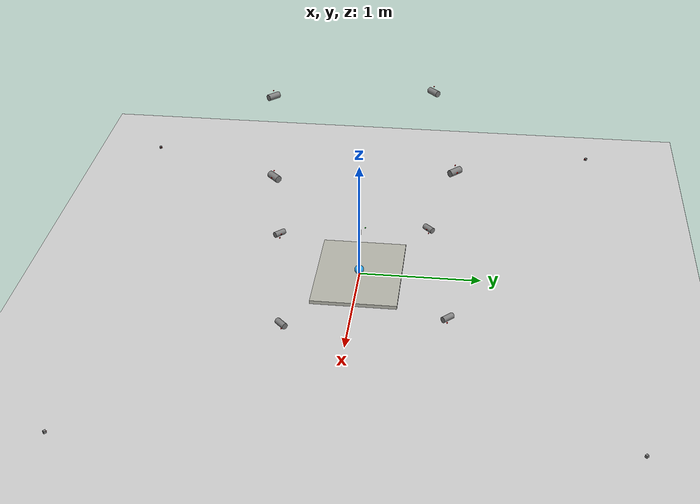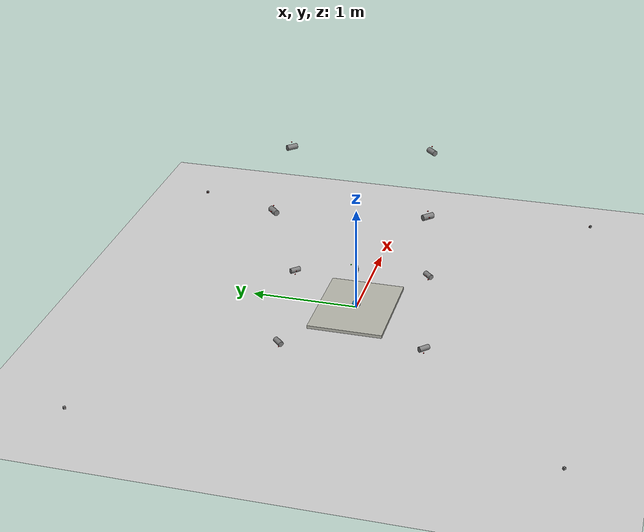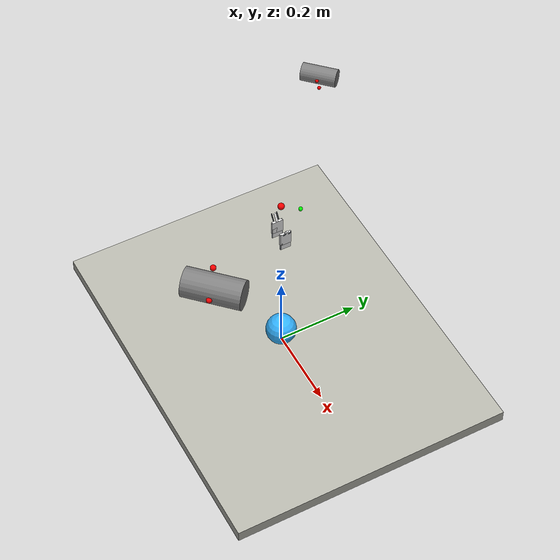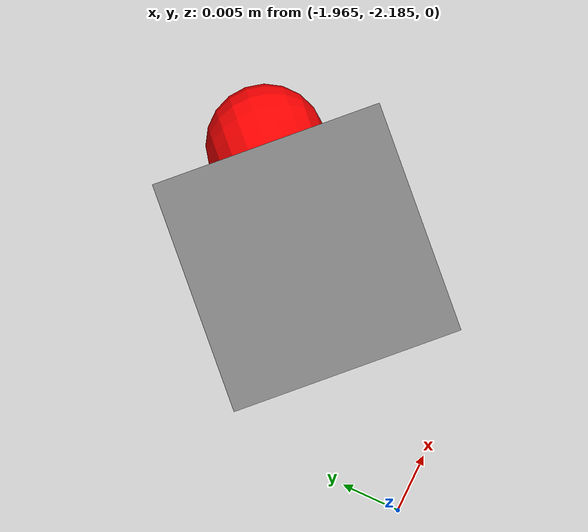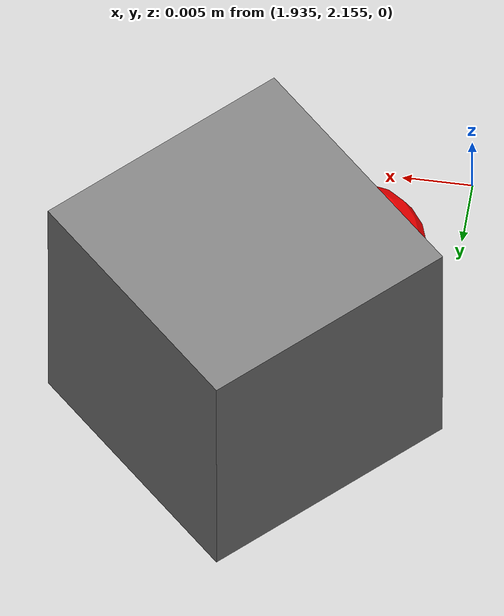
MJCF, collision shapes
<mujoco model="cdpr_contact_audit">
  <compiler autolimits="true"/>
  <option timestep="0.002" solver="Newton" iterations="50"/>
  <include file="/Users/damirnurtdinov/Desktop/My Courses/Диплом/RL_VLA_Bootstrapping/RL_VLA_Bootstrapping/robots/cdpr/cdpr_mujoco/cdpr.xml"/>
  <worldbody>
    <body name="audit_table" pos="0 0 0">
      <geom name="audit_table_top" type="box" size="0.45 0.35 0.015" friction="1.0 0.01 0.001" rgba="0.70 0.70 0.66 1"/>
    </body>
  </worldbody>
  <include file="/Users/damirnurtdinov/Desktop/My Courses/Диплом/RL_VLA_Bootstrapping/RL_VLA_Bootstrapping/robots/cdpr/cdpr_mujoco/stable_objects/ycb_apple.xml"/>
</mujoco>

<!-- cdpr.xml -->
<mujoco>
  <compiler autolimits="true"/>
  <default>
    <site type="sphere" rgba="1 0 0 1" size="0.005"/>
    <tendon rgba="0.22 0.24 0.27 0.0" width="0.002"/>
    <default class="gripper_surface">
      <geom contype="0" conaffinity="0" group="1" material="gripper_surface_material"
            rgba="0.94 0.94 0.94 1"/>
    </default>
    <default class="gripper_edge">
      <geom contype="0" conaffinity="0" group="1" rgba="0.10 0.12 0.14 1"/>
    </default>
    <default class="finger_pad_collision">
      <geom contype="2" conaffinity="1" group="3" condim="4"
            friction="3.0 0.08 0.003" solref="0.005 1"
            solimp="0.95 0.99 0.001" margin="0.001"
            rgba="0.94 0.94 0.94 1"/>
    </default>
  </default>
  <visual>
    <headlight ambient=".16 .16 .16"
               diffuse=".62 .62 .62"
               specular=".08 .08 .08"/>
    <rgba haze=".035 .050 .075 1"/>
    <map znear="0.0002" zfar="2.0"/>
  </visual>

  <asset>
    <material name="gripper_surface_material" rgba="1 1 1 1"
              specular="0.35" shininess="0.45" reflectance="0.08"/>
    <!-- Real CAD base, converted from the supplied ASCII STL to binary STL for MuJoCo. -->
    <mesh name="real_gripper_base" file="meshes/base2.stl"
          scale="0.00055 0.00055 0.00055"/>
  </asset>

  <worldbody>
    <light name="side_light"
         pos="1.0 -1.0 2.0"
         dir="-1 1 -1"
         ambient="0.04 0.04 0.04"
         diffuse="0.42 0.42 0.42"
         specular="0.06 0.06 0.06"
         directional="true"
         castshadow="false"/>
    <light name="fill_light"
         pos="-1.0 -0.8 1.7"
         dir="1 0.8 -1"
         ambient="0.05 0.05 0.05"
         diffuse="0.32 0.32 0.32"
         specular="0.03 0.03 0.03"
         directional="true"
         castshadow="false"/>
    <camera name="overview" mode="fixed" pos="0 -0.5412341 0.5125"
            xyaxes="1 0 0 0 0.5 0.8660254" fovy="45"/>

    <body name="rotor_1_up" pos="-0.535 -0.755 1.309" euler="90 45 0">
      <geom name="rotor_1_up" type="cylinder" size=".025 .05"/>
      <site name="top_main_site_1" pos="-0.025 0.00001 0" />
      <site name="top_sidesite_1" pos="0 0.05 0" />

      <body name="rotor_1_down" pos="0 -1.309 0" euler="0 0 0">
        <geom name="rotor_1_down" type="cylinder" size=".025 .05"/>
        <site name="bot_main_site_1" pos="0.025 -0.00001 0" />
        <site name="bot_sidesite_1" pos="0 -0.05 0" />

        <body name="slider_1" pos="-2 0 0">
          <inertial pos="0 0 0" mass="2" diaginertia="0.0001 0.0001 0.0001" />
          <joint name="slider_1" type="slide" axis="-1 0 0" damping="5"/>
          <geom type="box" size="0.01 0.01 0.01" />
          <site name="slider_1" pos="0.01 0 0"/>
        </body>
      </body>
    </body>

    <body name="rotor_2_up" pos="0.755 -0.525 1.309" euler="90 135 0">
      <geom name="rotor_2_up" type="cylinder" size=".025 .05"/>
      <site name="top_main_site_2" pos="-0.025 0.00001 0" />
      <site name="top_sidesite_2" pos="0 0.05 0" />

      <body name="rotor_2_down" pos="0 -1.309 0" euler="0 0 0">
        <geom name="rotor_2_down" type="cylinder" size=".025 .05"/>
        <site name="bot_main_site_2" pos="0.025 -0.00001 0" />
        <site name="bot_sidesite_2" pos="0 -0.05 0" />

        <body name="slider_2" pos="-2 0 0">
          <inertial pos="0 0 0" mass="2" diaginertia="0.0001 0.0001 0.0001" />
          <joint name="slider_2" type="slide" axis="-1 0 0" damping="5"/>
          <geom type="box" size="0.01 0.01 0.01" />
          <site name="slider_2" pos="0.01 0 0"/>
        </body>
      </body>
    </body>

    <body name="rotor_3_up" pos="0.535 0.755 1.309" euler="90 -135 0">
      <geom name="rotor_3_up" type="cylinder" size=".025 .05"/>
      <site name="top_main_site_3" pos="-0.025 0.00001 0" />
      <site name="top_sidesite_3" pos="0 0.05 0" />

      <body name="rotor_3_down" pos="0 -1.309 0" euler="0 0 0">
        <geom name="rotor_3_down" type="cylinder" size=".025 .05"/>
        <site name="bot_main_site_3" pos="0.025 -0.00001 0" />
        <site name="bot_sidesite_3" pos="0 -0.05 0" />

        <body name="slider_3" pos="-2 0 0">
          <inertial pos="0 0 0" mass="2" diaginertia="0.0001 0.0001 0.0001" />
          <joint name="slider_3" type="slide" axis="-1 0 0" damping="5"/>
          <geom type="box" size="0.01 0.01 0.01" />
          <site name="slider_3" pos="0.01 0 0"/>
        </body>
      </body>
    </body>

    <body name="rotor_4_up" pos="-0.755 0.525 1.309" euler="90  -45 0">
      <geom name="rotor_4_up" type="cylinder" size=".025 .05"/>
      <site name="top_main_site_4" pos="-0.025 0.00001 0" />
      <site name="top_sidesite_4" pos="0 0.05 0" />

      <body name="rotor_4_down" pos="0 -1.309 0" euler="0 0 0">
        <geom name="rotor_4_down" type="cylinder" size=".025 .05"/>
        <site name="bot_main_site_4" pos="0.025 -0.00001 0" />
        <site name="bot_sidesite_4" pos="0 -0.05 0" />

        <body name="slider_4" pos="-2 0 0">
          <inertial pos="0 0 0" mass="2" diaginertia="0.0001 0.0001 0.0001" />
          <joint name="slider_4" type="slide" axis="-1 0 0" damping="5"/>
          <geom type="box" size="0.01 0.01 0.01" />
          <site name="slider_4" pos="0.01 0 0"/>
        </body>
      </body>
    </body>

    <!-- Floor -->
    <geom name="floor" type="plane" size="5 5 0.1" pos="0 0 -0.1" rgba="0.8 0.8 0.8 1"/>

    <!-- Red square object on floor -->

    <!-- End-effector -->
    <!-- ===== Cable-suspended base (translation+rotation from cables) ===== -->
    <body name="ee_base" pos="0 0 0.40">
      <joint name="ee_free" type="free" damping="3" armature="0.002"/>
      <inertial pos="0 0 0" mass="1.2" diaginertia="0.02 0.02 0.02"/>

      <!-- Cable attachment point from the reference image; coordinates are unchanged. -->
      <site name="topcenter" pos="0 0 0.08" size="0.008" rgba="1 0 0 1"/>

      <!-- ===== NEW: intermediate yaw body ===== -->
      <body name="yaw_frame" pos="0 0 0">
        <!-- must have inertial because it has a joint -->
        <inertial pos="0 0 0" mass="0.15" diaginertia="0.0006 0.0006 0.0006"/>
        <joint name="ee_yaw" type="hinge" axis="0 0 1"
              limited="true" range="-180 180" damping="0.4"/>

        <!-- ===== Orientation stabilizer under yaw ===== -->
        <body name="ee_stab" pos="0 0 0">
          <inertial pos="0 0 0" mass="0.6" diaginertia="0.005 0.005 0.005"/>
          <joint name="ee_ball" type="ball" damping="6" stiffness="80" armature="0.02" limited="false"/>

          <!-- Camera follows the lowered mesh while retaining its clear downward view. -->
          <body name="camera_body" pos="0 0.05 0.045">
            <site name="ee_camera_marker" type="sphere" size="0.005" rgba="0 1 0 1"/>
            <camera name="ee_camera" mode="fixed" fovy="60" euler="-15 0 0"/>
          </body>

          <!-- Gripper -->
          <body name="ee_platform" pos="0 0 0.08">
            <inertial pos="0 0 0" mass="0.35" diaginertia="0.003 0.003 0.003"/>

            <!-- The supplied base is lowered so topcenter lies on top of the circular
                 housing; its camera mount still points toward camera_body at +Y. -->
            <geom name="palm" class="gripper_surface" type="mesh" mesh="real_gripper_base"
                  pos="0 0 -0.025" euler="180 0 0"/>

            <!-- The synchronized slide-joint control contract is unchanged. -->
            <body name="finger_left_car" pos="0.02 0 0">
              <inertial pos="0 0 0" mass="0.08" diaginertia="0.0002 0.0002 0.00015"/>
              <joint name="finger_l" type="slide" axis="1 0 0" limited="true" range="0 0.03" damping="3.0"/>
              <geom name="finger_l_shoulder" class="gripper_surface" type="capsule"
                    fromto="0.010 0 -0.055  0 0 -0.070" size="0.0025"/>
              <geom name="finger_l_shoulder_edge_front" class="gripper_edge" type="capsule"
                    fromto="0.014 -0.0065 -0.0565  0.004 -0.0065 -0.0715" size="0.0013"/>
              <geom name="finger_l_shoulder_edge_back" class="gripper_edge" type="capsule"
                    fromto="0.014 0.0065 -0.0565  0.004 0.0065 -0.0715" size="0.0013"/>
              <geom name="finger_l_link" class="gripper_surface" type="box"
                    size="0.0025 0.012 0.0175" pos="0 0 -0.0875"/>
              <geom name="finger_l_tip" class="gripper_surface" type="box"
                    size="0.0025 0.012 0.007" pos="0 0 -0.112"/>
              <geom name="finger_l_edge_front_outer" class="gripper_edge" type="capsule"
                    fromto="0.0018 -0.0125 -0.0695  0.0018 -0.0125 -0.1195" size="0.0007"/>
              <geom name="finger_l_edge_front_inner" class="gripper_edge" type="capsule"
                    fromto="-0.0018 -0.0125 -0.0695  -0.0018 -0.0125 -0.1195" size="0.0007"/>
              <geom name="finger_l_edge_back_outer" class="gripper_edge" type="capsule"
                    fromto="0.0018 0.0125 -0.0695  0.0018 0.0125 -0.1195" size="0.0007"/>
              <geom name="finger_l_edge_back_inner" class="gripper_edge" type="capsule"
                    fromto="-0.0018 0.0125 -0.0695  -0.0018 0.0125 -0.1195" size="0.0007"/>
              <geom name="finger_l_edge_front_bottom" class="gripper_edge" type="capsule"
                    fromto="-0.0018 -0.0125 -0.1195  0.0018 -0.0125 -0.1195" size="0.0007"/>
              <geom name="finger_l_edge_back_bottom" class="gripper_edge" type="capsule"
                    fromto="-0.0018 0.0125 -0.1195  0.0018 0.0125 -0.1195" size="0.0007"/>
              <geom name="left_finger_pad" class="finger_pad_collision" type="box"
                    size="0.0025 0.014 0.0175" pos="0 0 -0.0875"/>
            </body>

            <body name="finger_right_car" pos="-0.02 0 0">
              <inertial pos="0 0 0" mass="0.08" diaginertia="0.0002 0.0002 0.00015"/>
              <joint name="finger_r" type="slide" axis="-1 0 0" limited="true" range="0 0.03" damping="3.0"/>
              <geom name="finger_r_shoulder" class="gripper_surface" type="capsule"
                    fromto="-0.010 0 -0.055  0 0 -0.070" size="0.0025"/>
              <geom name="finger_r_shoulder_edge_front" class="gripper_edge" type="capsule"
                    fromto="-0.014 -0.0065 -0.0565  -0.004 -0.0065 -0.0715" size="0.0013"/>
              <geom name="finger_r_shoulder_edge_back" class="gripper_edge" type="capsule"
                    fromto="-0.014 0.0065 -0.0565  -0.004 0.0065 -0.0715" size="0.0013"/>
              <geom name="finger_r_link" class="gripper_surface" type="box"
                    size="0.0025 0.012 0.0175" pos="0 0 -0.0875"/>
              <geom name="finger_r_tip" class="gripper_surface" type="box"
                    size="0.0025 0.012 0.007" pos="0 0 -0.112"/>
              <geom name="finger_r_edge_front_outer" class="gripper_edge" type="capsule"
                    fromto="-0.0018 -0.0125 -0.0695  -0.0018 -0.0125 -0.1195" size="0.0007"/>
              <geom name="finger_r_edge_front_inner" class="gripper_edge" type="capsule"
                    fromto="0.0018 -0.0125 -0.0695  0.0018 -0.0125 -0.1195" size="0.0007"/>
              <geom name="finger_r_edge_back_outer" class="gripper_edge" type="capsule"
                    fromto="-0.0018 0.0125 -0.0695  -0.0018 0.0125 -0.1195" size="0.0007"/>
              <geom name="finger_r_edge_back_inner" class="gripper_edge" type="capsule"
                    fromto="0.0018 0.0125 -0.0695  0.0018 0.0125 -0.1195" size="0.0007"/>
              <geom name="finger_r_edge_front_bottom" class="gripper_edge" type="capsule"
                    fromto="-0.0018 -0.0125 -0.1195  0.0018 -0.0125 -0.1195" size="0.0007"/>
              <geom name="finger_r_edge_back_bottom" class="gripper_edge" type="capsule"
                    fromto="-0.0018 0.0125 -0.1195  0.0018 0.0125 -0.1195" size="0.0007"/>
              <geom name="right_finger_pad" class="finger_pad_collision" type="box"
                    size="0.0025 0.014 0.0175" pos="0 0 -0.0875"/>
            </body>
          </body>
        </body>
      </body>
    </body>

  </worldbody>

  <equality>
    <!-- Enforce q_r = q_l  (10 poly coefficients: a0..a9). q2 = a0 + a1*q1 + ... -->
    <joint joint1="finger_l" joint2="finger_r" polycoef="0 1 0 0 0"/>
  </equality>

  <tendon>
    <spatial name="rope_1" limited="true" range="0 4.235" stiffness="0" damping="0" >
      <site site="topcenter" />
      <geom geom="rotor_1_up" sidesite="top_sidesite_1" />
      <site site="top_main_site_1" />
      <site site="bot_main_site_1" />
      <geom geom="rotor_1_down" sidesite="bot_sidesite_1" />
      <site site="slider_1" />
    </spatial>

    <spatial name="rope_2" limited="true" range="0 4.235" stiffness="0" damping="0" >
      <site site="topcenter" />
      <geom geom="rotor_2_up" sidesite="top_sidesite_2" />
      <site site="top_main_site_2" />
      <site site="bot_main_site_2" />
      <geom geom="rotor_2_down" sidesite="bot_sidesite_2" />
      <site site="slider_2" />
    </spatial>

    <spatial name="rope_3" limited="true" range="0 4.235" stiffness="0" damping="0" >
      <site site="topcenter" />
      <geom geom="rotor_3_up" sidesite="top_sidesite_3" />
      <site site="top_main_site_3" />
      <site site="bot_main_site_3" />
      <geom geom="rotor_3_down" sidesite="bot_sidesite_3" />
      <site site="slider_3" />
    </spatial>

    <spatial name="rope_4" limited="true" range="0 4.235" stiffness="0" damping="0" >
      <site site="topcenter" />
      <geom geom="rotor_4_up" sidesite="top_sidesite_4" />
      <site site="top_main_site_4" />
      <site site="bot_main_site_4" />
      <geom geom="rotor_4_down" sidesite="bot_sidesite_4" />
      <site site="slider_4" />
    </spatial>
  </tendon>

  <actuator>
    <!-- Tuned for the 2 ms MJWarp timestep: the previous kv=300 setting was
         heavily overdamped and left the platform far behind policy targets. -->
    <position name="slider_1_pos" joint="slider_1" ctrlrange="-4.5 4.5" kp="6000" kv="100"/>
    <position name="slider_2_pos" joint="slider_2" ctrlrange="-4.5 4.5" kp="6000" kv="100"/>
    <position name="slider_3_pos" joint="slider_3" ctrlrange="-4.5 4.5" kp="6000" kv="100"/>
    <position name="slider_4_pos" joint="slider_4" ctrlrange="-4.5 4.5" kp="6000" kv="100"/>
    <!-- Tool yaw and gripper -->
    <position name="act_ee_yaw" joint="ee_yaw" kp="30" ctrlrange="-180 180"/>
    <!-- Normalized gripper target: ctrl=0 is closed, ctrl=1 maps to 0.03 m finger travel. -->
    <position name="act_gripper" joint="finger_l" kp="5.0" kv="0.1"
              gear="33.3333333333" ctrlrange="0 1"/>
  </actuator>

  <sensor>
    <framepos objtype="camera" objname="overview"/>
    <framequat objtype="camera" objname="overview"/>
    <framepos objtype="camera" objname="ee_camera"/>
    <framequat objtype="camera" objname="ee_camera"/>
  </sensor>
</mujoco>

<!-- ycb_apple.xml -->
<mujoco model="ycb_apple">
  <compiler autolimits="true"/>
  <asset>
    <mesh name="ycb_apple_visual_mesh"
          file="/Users/damirnurtdinov/Desktop/My Courses/Диплом/CDPR-Dataset/external_assets/ycb_dataset/ycb/apple/textured.obj"/>
    <texture name="ycb_apple_texture" type="2d"
             file="/Users/damirnurtdinov/Desktop/My Courses/Диплом/CDPR-Dataset/external_assets/ycb_dataset/ycb/apple/texture_map.png"/>
    <material name="ycb_apple_material" texture="ycb_apple_texture"/>
  </asset>
  <default>
    <default class="object_collision">
      <geom contype="1" conaffinity="7" group="3" friction="0.9 0.01 0.001"
            condim="3" solref="0.008 1" solimp="0.90 0.95 0.001"
            margin="0.001" rgba="0.20 0.70 1.00 0.28"/>
    </default>
    <default class="object_visual">
      <geom contype="0" conaffinity="0" group="1"/>
    </default>
  </default>
  <worldbody>
    <body name="ycb_apple" pos="0 0 0.038">
      <freejoint/>
      <inertial pos="0 0 0" mass="0.11" diaginertia="0.000064 0.000064 0.000064"/>
      <geom name="ycb_apple_collision" class="object_collision" type="sphere" size="0.038"/>
      <geom name="ycb_apple_visual" class="object_visual" type="mesh"
            mesh="ycb_apple_visual_mesh" material="ycb_apple_material"/>
    </body>
  </worldbody>
</mujoco>
